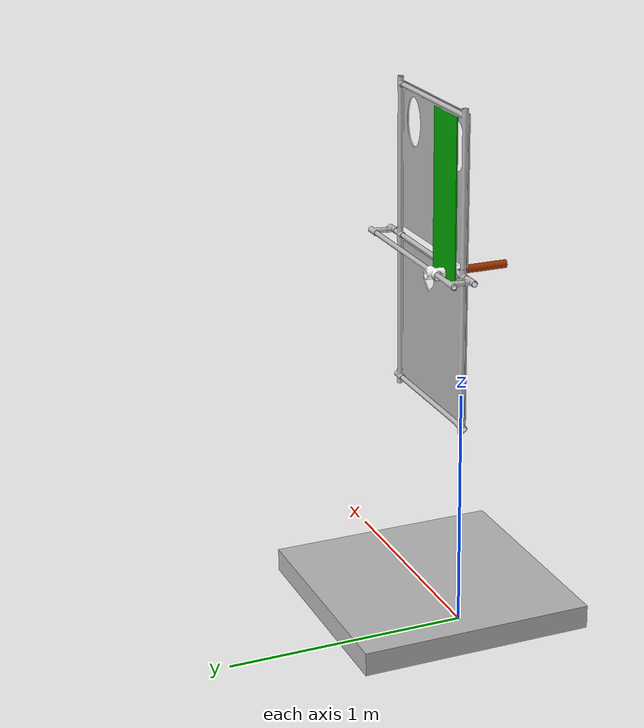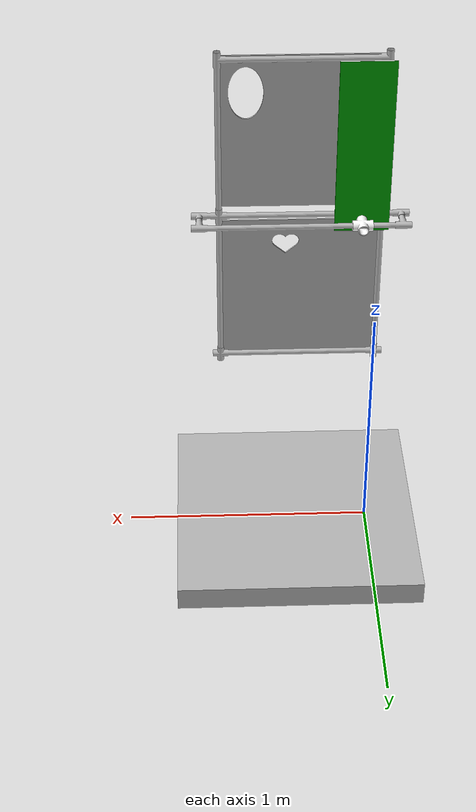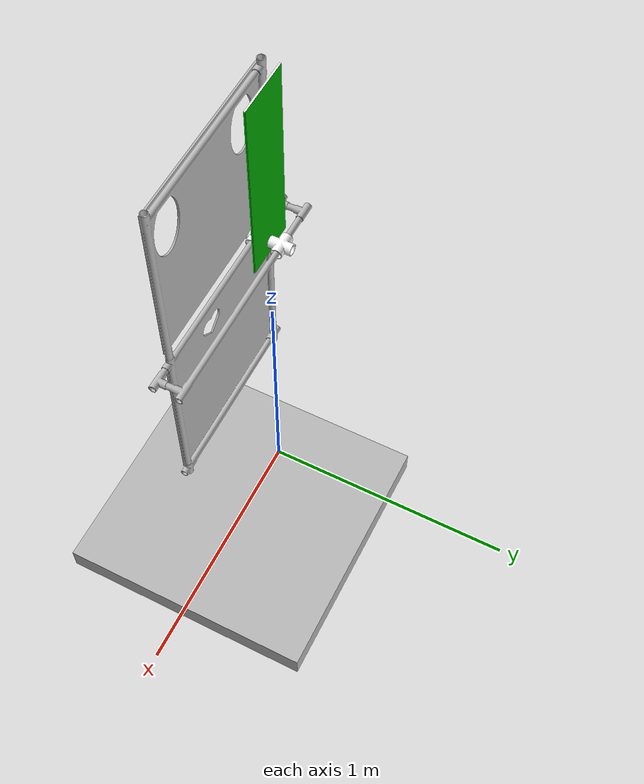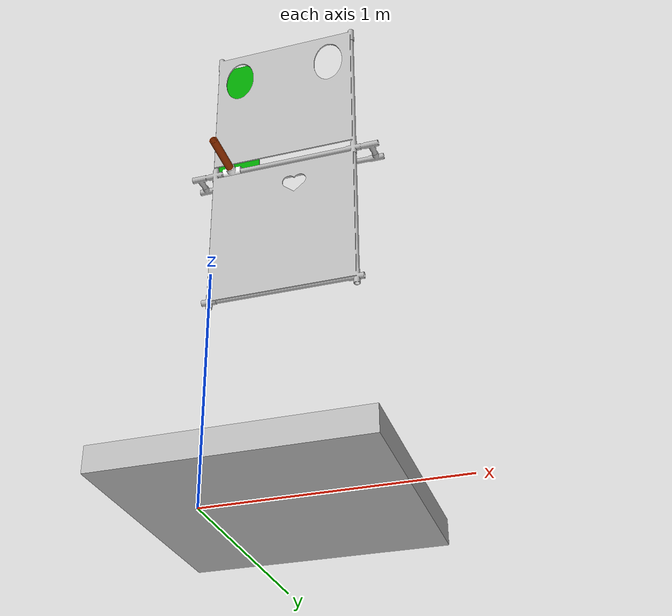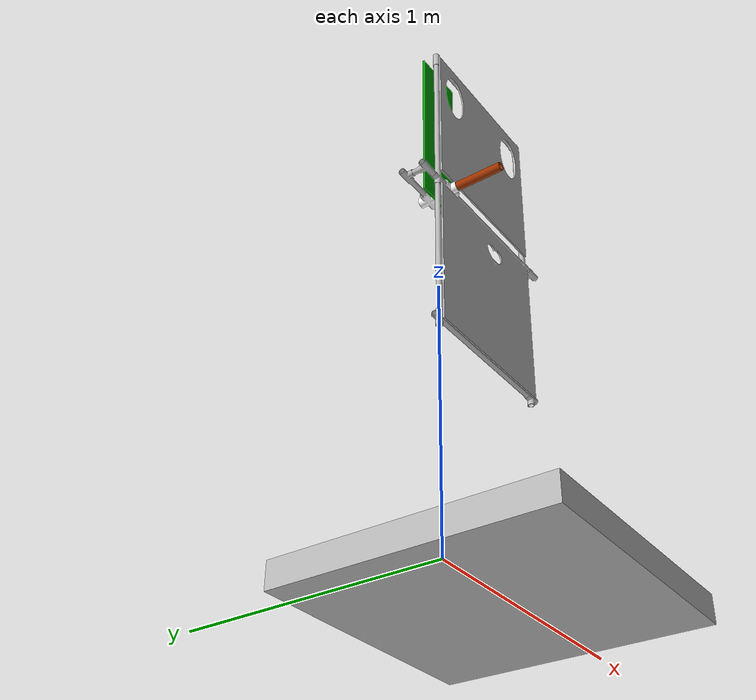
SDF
<?xml version='1.0'?>
<sdf version="1.6">
<model name="vampire_stake">

    <pose>0 0 1.5 0 0 0</pose>

    <link name="base_link">
      <inertial>
        <origin
          xyz="0.0 0.0 0.0"
          rpy="0 0 0" />
        <mass
          value="1.0" />
        <inertia
          ixx="1.0E-5"
          ixy="0.0"
          ixz="0.0"
          iyy="1.0E-5"
          iyz="0.0"
          izz="1.0E-5" />
      </inertial>
      <visual name="visual">
        <geometry>
          <mesh>
            <uri>model://vampire_stake/vampire_board.dae</uri>
          </mesh>
        </geometry>
      </visual>
      <collision name="collision">
        <geometry>
          <mesh>
            <uri>model://vampire_stake/vampire_board.dae</uri>
          </mesh>
        </geometry>
      </collision>
    </link>

    <link name="lever_link">
      <inertial>
        <origin
          xyz="0.0 0.0 0.0"
          rpy="0 0 0" />
        <mass
          value="1.0" />
        <inertia
          ixx="1.0E-5"
          ixy="0.0"
          ixz="0.0"
          iyy="1.0E-5"
          iyz="0.0"
          izz="1.0E-5" />
      </inertial>
      <visual name="visual">
        <geometry>
          <mesh>
            <uri>model://vampire_stake/vampire_lever.dae</uri>
          </mesh>
        </geometry>
      </visual>
      <collision name="collision">
        <geometry>
          <mesh>
            <uri>model://vampire_stake/vampire_lever.dae</uri>
          </mesh>
        </geometry>
      </collision>
    </link>

    <joint name="lever_joint" type="prismatic">
        <pose>0 0 0 0 0 0</pose>
        <child>lever_link</child>
        <parent>base_link</parent>
        <axis>
            <limit>
                <lower>-0.05</lower>
                <upper>0.45</upper>
            </limit>
            <dynamics>
              <damping>0.1</damping>
              <friction>0.2</friction>
            </dynamics>
            <xyz>1 0 0</xyz>
        </axis>
    </joint>

    <link name="magic_base_link">
      <inertial>
        <origin
          xyz="0.0 1.0 -2.0"
          rpy="0 0 0" />
        <mass
          value="10.0" />
        <inertia
          ixx="1.0E-5"
          ixy="0.0"
          ixz="0.0"
          iyy="1.0E-5"
          iyz="0.0"
          izz="1.0E-5" />
      </inertial>
      <visual name="visual">
        <pose>0.3 0 -1.5 0 0 0</pose>
        <geometry>
          <box>
            <size>1.0 1.0 0.1</size>
          </box>
        </geometry>
      </visual>
      <collision name="collision">
        <pose>0.3 0 -1.5 0 0 0</pose>
        <geometry>
          <box>
            <size>1.0 1.0 0.1</size>
          </box>
        </geometry>
      </collision>
    </link>

    <joint name="magic_base_joint" type="fixed">
        <child>base_link</child>
        <parent>magic_base_link</parent>
    </joint>

  </model>
</sdf>
